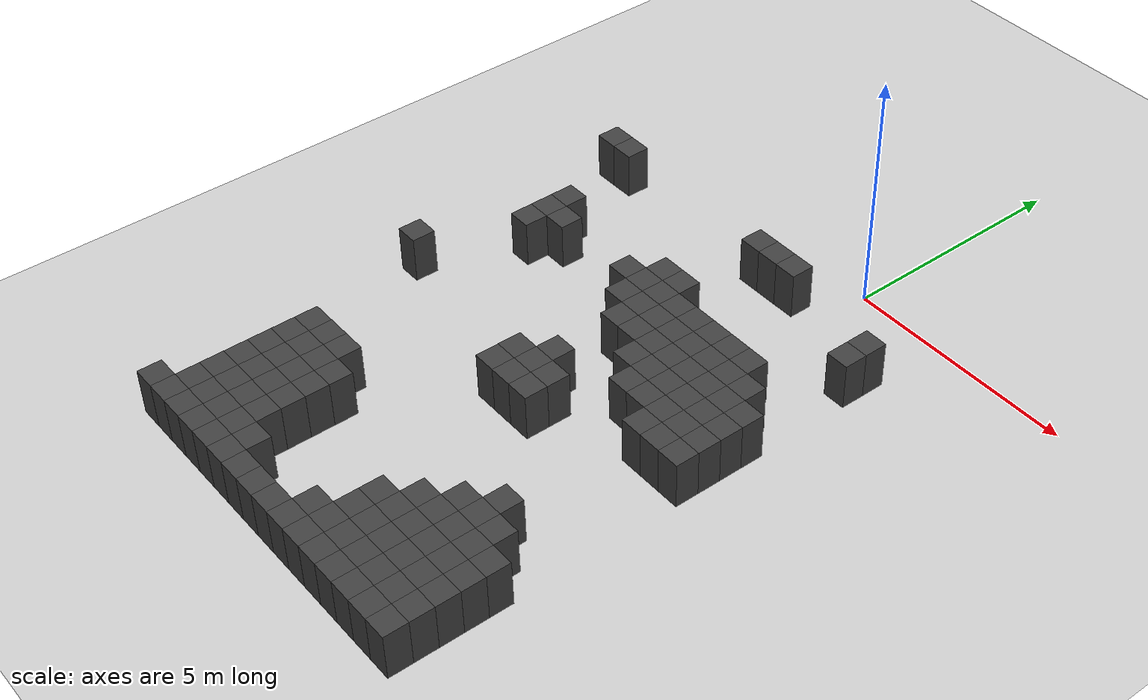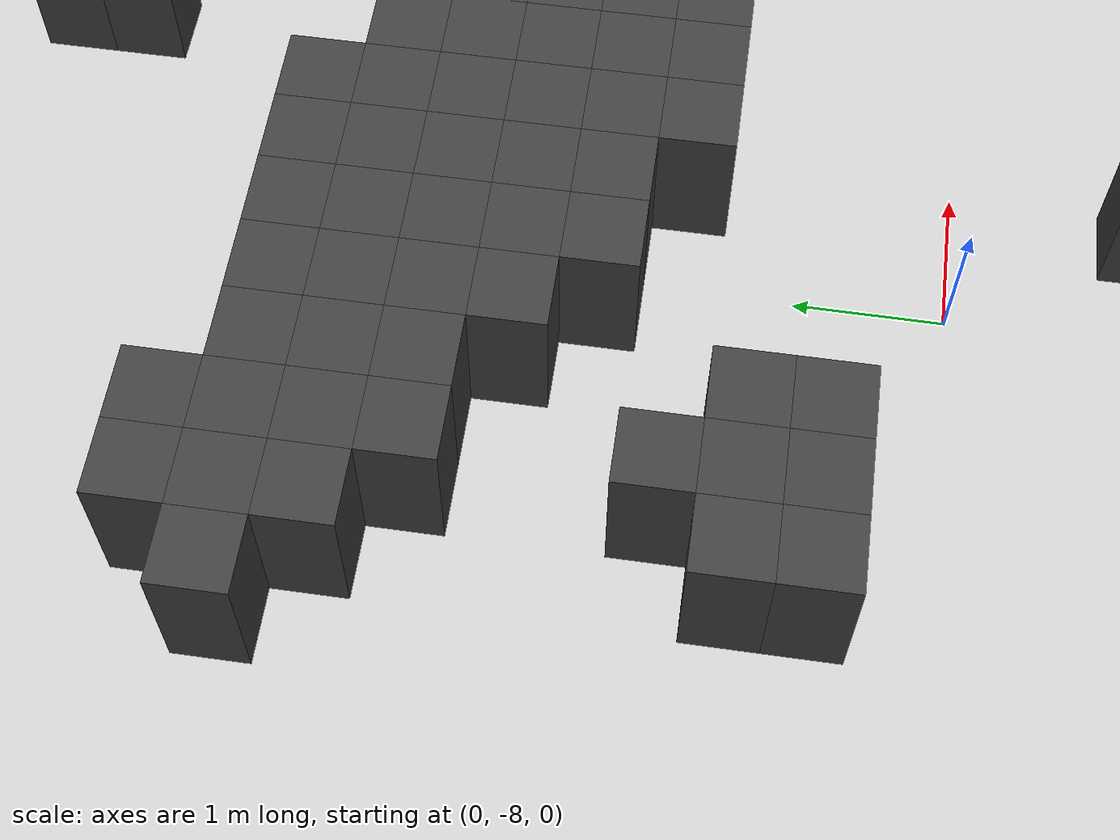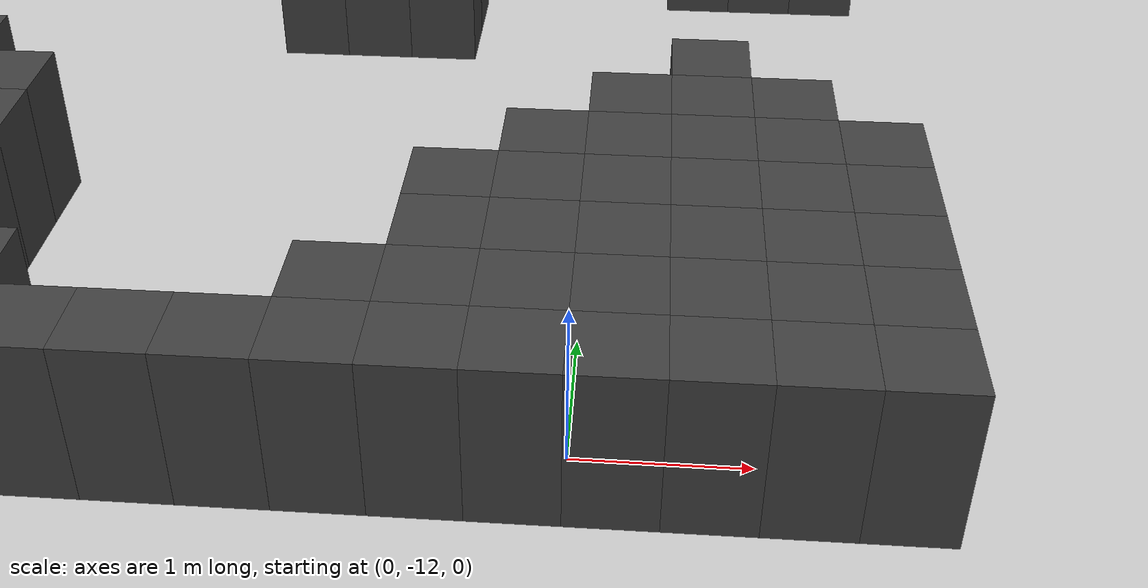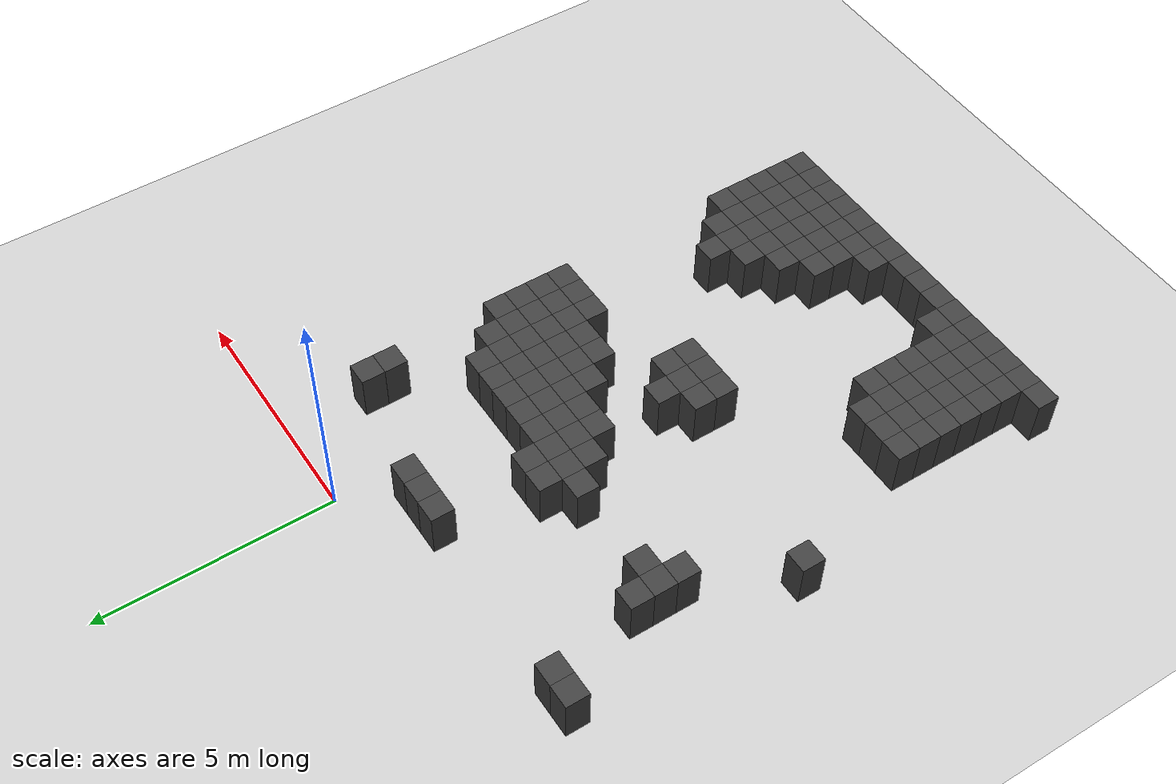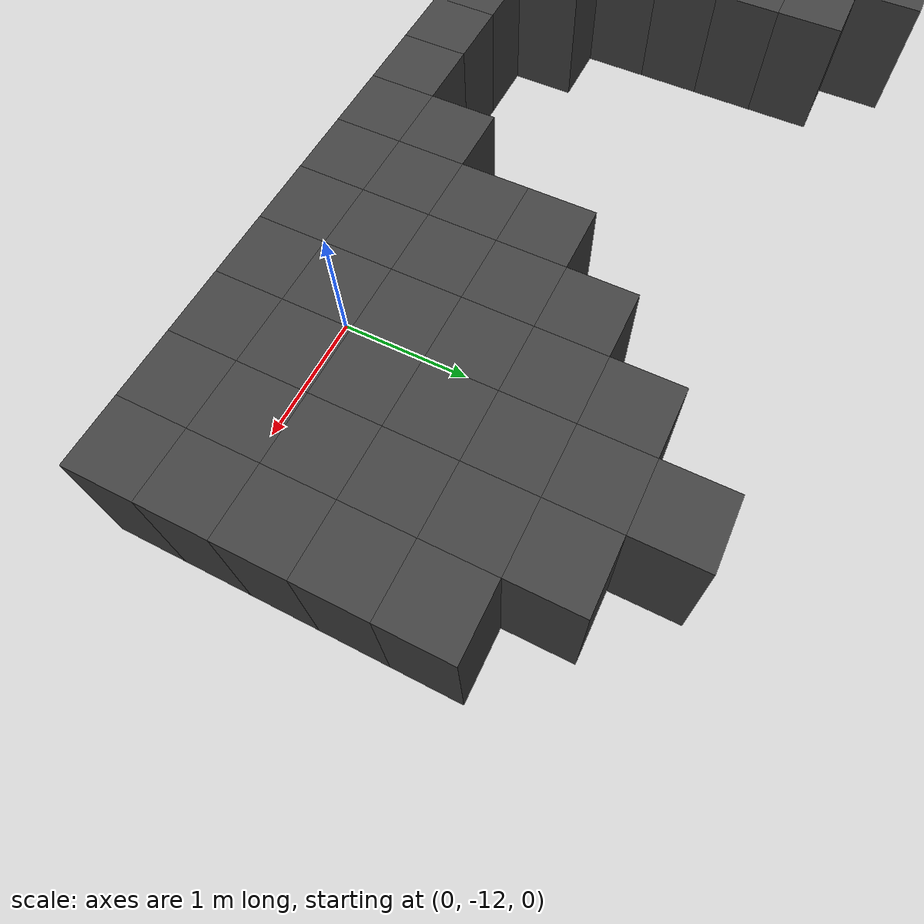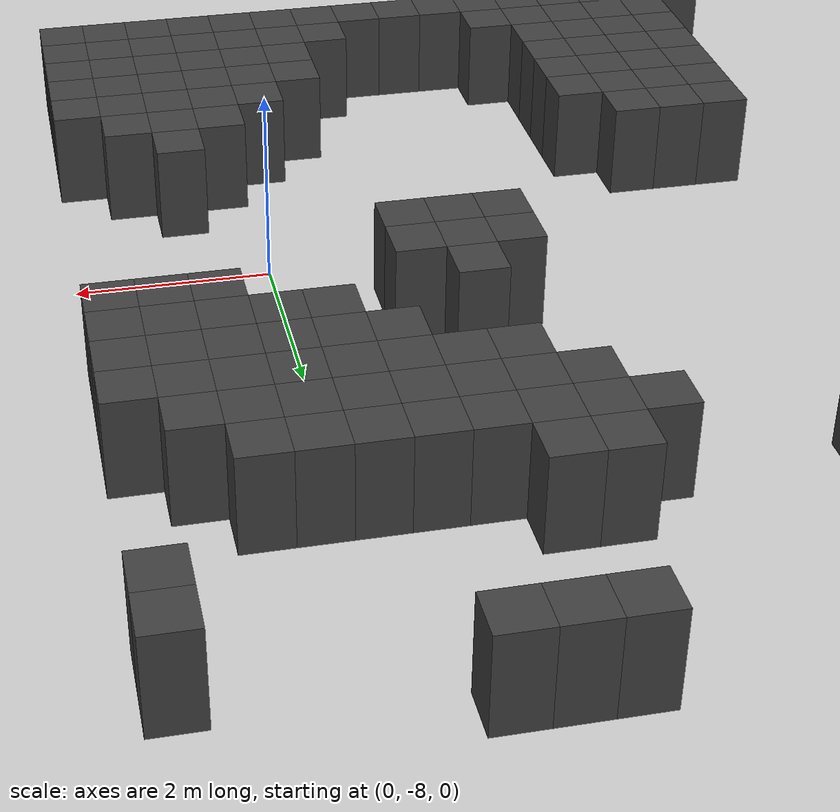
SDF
<sdf version="1.7">
 <world name="map_8843">
  <model name="ground_plane">
   <static>true</static>
   <link name="link">
    <collision name="collision">
     <geometry><plane><normal>0 0 1</normal><size>200 200</size></plane></geometry>
    </collision>
    <visual name="visual">
     <geometry><plane><normal>0 0 1</normal><size>200 200</size></plane></geometry>
     <material><ambient>0.8 0.8 0.8 1</ambient><diffuse>0.8 0.8 0.8 1</diffuse></material>
    </visual>
   </link>
  </model>
  <model name="maze_environment">
   <static>true</static>
   <link name="wall_541">
    <pose>-6.250 -1.250 0.500 0 0 0</pose>
    <collision name="col"><geometry><box><size>0.5 0.5 1.0</size></box></geometry></collision>
    <visual name="vis">
     <geometry><box><size>0.5 0.5 1.0</size></box></geometry>
     <material><ambient>0.15 0.15 0.15 1</ambient><diffuse>0.25 0.25 0.25 1</diffuse></material>
    </visual>
   </link>
   <link name="wall_542">
    <pose>-5.750 -1.250 0.500 0 0 0</pose>
    <collision name="col"><geometry><box><size>0.5 0.5 1.0</size></box></geometry></collision>
    <visual name="vis">
     <geometry><box><size>0.5 0.5 1.0</size></box></geometry>
     <material><ambient>0.15 0.15 0.15 1</ambient><diffuse>0.25 0.25 0.25 1</diffuse></material>
    </visual>
   </link>
   <link name="wall_543">
    <pose>-1.750 -1.250 0.500 0 0 0</pose>
    <collision name="col"><geometry><box><size>0.5 0.5 1.0</size></box></geometry></collision>
    <visual name="vis">
     <geometry><box><size>0.5 0.5 1.0</size></box></geometry>
     <material><ambient>0.15 0.15 0.15 1</ambient><diffuse>0.25 0.25 0.25 1</diffuse></material>
    </visual>
   </link>
   <link name="wall_544">
    <pose>-1.250 -1.250 0.500 0 0 0</pose>
    <collision name="col"><geometry><box><size>0.5 0.5 1.0</size></box></geometry></collision>
    <visual name="vis">
     <geometry><box><size>0.5 0.5 1.0</size></box></geometry>
     <material><ambient>0.15 0.15 0.15 1</ambient><diffuse>0.25 0.25 0.25 1</diffuse></material>
    </visual>
   </link>
   <link name="wall_545">
    <pose>-0.750 -1.250 0.500 0 0 0</pose>
    <collision name="col"><geometry><box><size>0.5 0.5 1.0</size></box></geometry></collision>
    <visual name="vis">
     <geometry><box><size>0.5 0.5 1.0</size></box></geometry>
     <material><ambient>0.15 0.15 0.15 1</ambient><diffuse>0.25 0.25 0.25 1</diffuse></material>
    </visual>
   </link>
   <link name="wall_558">
    <pose>1.750 -1.750 0.500 0 0 0</pose>
    <collision name="col"><geometry><box><size>0.5 0.5 1.0</size></box></geometry></collision>
    <visual name="vis">
     <geometry><box><size>0.5 0.5 1.0</size></box></geometry>
     <material><ambient>0.15 0.15 0.15 1</ambient><diffuse>0.25 0.25 0.25 1</diffuse></material>
    </visual>
   </link>
   <link name="wall_571">
    <pose>1.750 -2.250 0.500 0 0 0</pose>
    <collision name="col"><geometry><box><size>0.5 0.5 1.0</size></box></geometry></collision>
    <visual name="vis">
     <geometry><box><size>0.5 0.5 1.0</size></box></geometry>
     <material><ambient>0.15 0.15 0.15 1</ambient><diffuse>0.25 0.25 0.25 1</diffuse></material>
    </visual>
   </link>
   <link name="wall_598">
    <pose>-5.250 -3.250 0.500 0 0 0</pose>
    <collision name="col"><geometry><box><size>0.5 0.5 1.0</size></box></geometry></collision>
    <visual name="vis">
     <geometry><box><size>0.5 0.5 1.0</size></box></geometry>
     <material><ambient>0.15 0.15 0.15 1</ambient><diffuse>0.25 0.25 0.25 1</diffuse></material>
    </visual>
   </link>
   <link name="wall_599">
    <pose>-2.250 -3.250 0.500 0 0 0</pose>
    <collision name="col"><geometry><box><size>0.5 0.5 1.0</size></box></geometry></collision>
    <visual name="vis">
     <geometry><box><size>0.5 0.5 1.0</size></box></geometry>
     <material><ambient>0.15 0.15 0.15 1</ambient><diffuse>0.25 0.25 0.25 1</diffuse></material>
    </visual>
   </link>
   <link name="wall_600">
    <pose>-1.750 -3.250 0.500 0 0 0</pose>
    <collision name="col"><geometry><box><size>0.5 0.5 1.0</size></box></geometry></collision>
    <visual name="vis">
     <geometry><box><size>0.5 0.5 1.0</size></box></geometry>
     <material><ambient>0.15 0.15 0.15 1</ambient><diffuse>0.25 0.25 0.25 1</diffuse></material>
    </visual>
   </link>
   <link name="wall_612">
    <pose>-5.250 -3.750 0.500 0 0 0</pose>
    <collision name="col"><geometry><box><size>0.5 0.5 1.0</size></box></geometry></collision>
    <visual name="vis">
     <geometry><box><size>0.5 0.5 1.0</size></box></geometry>
     <material><ambient>0.15 0.15 0.15 1</ambient><diffuse>0.25 0.25 0.25 1</diffuse></material>
    </visual>
   </link>
   <link name="wall_613">
    <pose>-4.750 -3.750 0.500 0 0 0</pose>
    <collision name="col"><geometry><box><size>0.5 0.5 1.0</size></box></geometry></collision>
    <visual name="vis">
     <geometry><box><size>0.5 0.5 1.0</size></box></geometry>
     <material><ambient>0.15 0.15 0.15 1</ambient><diffuse>0.25 0.25 0.25 1</diffuse></material>
    </visual>
   </link>
   <link name="wall_614">
    <pose>-2.750 -3.750 0.500 0 0 0</pose>
    <collision name="col"><geometry><box><size>0.5 0.5 1.0</size></box></geometry></collision>
    <visual name="vis">
     <geometry><box><size>0.5 0.5 1.0</size></box></geometry>
     <material><ambient>0.15 0.15 0.15 1</ambient><diffuse>0.25 0.25 0.25 1</diffuse></material>
    </visual>
   </link>
   <link name="wall_615">
    <pose>-2.250 -3.750 0.500 0 0 0</pose>
    <collision name="col"><geometry><box><size>0.5 0.5 1.0</size></box></geometry></collision>
    <visual name="vis">
     <geometry><box><size>0.5 0.5 1.0</size></box></geometry>
     <material><ambient>0.15 0.15 0.15 1</ambient><diffuse>0.25 0.25 0.25 1</diffuse></material>
    </visual>
   </link>
   <link name="wall_616">
    <pose>-1.750 -3.750 0.500 0 0 0</pose>
    <collision name="col"><geometry><box><size>0.5 0.5 1.0</size></box></geometry></collision>
    <visual name="vis">
     <geometry><box><size>0.5 0.5 1.0</size></box></geometry>
     <material><ambient>0.15 0.15 0.15 1</ambient><diffuse>0.25 0.25 0.25 1</diffuse></material>
    </visual>
   </link>
   <link name="wall_617">
    <pose>-1.250 -3.750 0.500 0 0 0</pose>
    <collision name="col"><geometry><box><size>0.5 0.5 1.0</size></box></geometry></collision>
    <visual name="vis">
     <geometry><box><size>0.5 0.5 1.0</size></box></geometry>
     <material><ambient>0.15 0.15 0.15 1</ambient><diffuse>0.25 0.25 0.25 1</diffuse></material>
    </visual>
   </link>
   <link name="wall_618">
    <pose>-0.750 -3.750 0.500 0 0 0</pose>
    <collision name="col"><geometry><box><size>0.5 0.5 1.0</size></box></geometry></collision>
    <visual name="vis">
     <geometry><box><size>0.5 0.5 1.0</size></box></geometry>
     <material><ambient>0.15 0.15 0.15 1</ambient><diffuse>0.25 0.25 0.25 1</diffuse></material>
    </visual>
   </link>
   <link name="wall_619">
    <pose>-0.250 -3.750 0.500 0 0 0</pose>
    <collision name="col"><geometry><box><size>0.5 0.5 1.0</size></box></geometry></collision>
    <visual name="vis">
     <geometry><box><size>0.5 0.5 1.0</size></box></geometry>
     <material><ambient>0.15 0.15 0.15 1</ambient><diffuse>0.25 0.25 0.25 1</diffuse></material>
    </visual>
   </link>
   <link name="wall_620">
    <pose>0.250 -3.750 0.500 0 0 0</pose>
    <collision name="col"><geometry><box><size>0.5 0.5 1.0</size></box></geometry></collision>
    <visual name="vis">
     <geometry><box><size>0.5 0.5 1.0</size></box></geometry>
     <material><ambient>0.15 0.15 0.15 1</ambient><diffuse>0.25 0.25 0.25 1</diffuse></material>
    </visual>
   </link>
   <link name="wall_621">
    <pose>0.750 -3.750 0.500 0 0 0</pose>
    <collision name="col"><geometry><box><size>0.5 0.5 1.0</size></box></geometry></collision>
    <visual name="vis">
     <geometry><box><size>0.5 0.5 1.0</size></box></geometry>
     <material><ambient>0.15 0.15 0.15 1</ambient><diffuse>0.25 0.25 0.25 1</diffuse></material>
    </visual>
   </link>
   <link name="wall_632">
    <pose>-5.250 -4.250 0.500 0 0 0</pose>
    <collision name="col"><geometry><box><size>0.5 0.5 1.0</size></box></geometry></collision>
    <visual name="vis">
     <geometry><box><size>0.5 0.5 1.0</size></box></geometry>
     <material><ambient>0.15 0.15 0.15 1</ambient><diffuse>0.25 0.25 0.25 1</diffuse></material>
    </visual>
   </link>
   <link name="wall_633">
    <pose>-2.250 -4.250 0.500 0 0 0</pose>
    <collision name="col"><geometry><box><size>0.5 0.5 1.0</size></box></geometry></collision>
    <visual name="vis">
     <geometry><box><size>0.5 0.5 1.0</size></box></geometry>
     <material><ambient>0.15 0.15 0.15 1</ambient><diffuse>0.25 0.25 0.25 1</diffuse></material>
    </visual>
   </link>
   <link name="wall_634">
    <pose>-1.750 -4.250 0.500 0 0 0</pose>
    <collision name="col"><geometry><box><size>0.5 0.5 1.0</size></box></geometry></collision>
    <visual name="vis">
     <geometry><box><size>0.5 0.5 1.0</size></box></geometry>
     <material><ambient>0.15 0.15 0.15 1</ambient><diffuse>0.25 0.25 0.25 1</diffuse></material>
    </visual>
   </link>
   <link name="wall_635">
    <pose>-1.250 -4.250 0.500 0 0 0</pose>
    <collision name="col"><geometry><box><size>0.5 0.5 1.0</size></box></geometry></collision>
    <visual name="vis">
     <geometry><box><size>0.5 0.5 1.0</size></box></geometry>
     <material><ambient>0.15 0.15 0.15 1</ambient><diffuse>0.25 0.25 0.25 1</diffuse></material>
    </visual>
   </link>
   <link name="wall_636">
    <pose>-0.750 -4.250 0.500 0 0 0</pose>
    <collision name="col"><geometry><box><size>0.5 0.5 1.0</size></box></geometry></collision>
    <visual name="vis">
     <geometry><box><size>0.5 0.5 1.0</size></box></geometry>
     <material><ambient>0.15 0.15 0.15 1</ambient><diffuse>0.25 0.25 0.25 1</diffuse></material>
    </visual>
   </link>
   <link name="wall_637">
    <pose>-0.250 -4.250 0.500 0 0 0</pose>
    <collision name="col"><geometry><box><size>0.5 0.5 1.0</size></box></geometry></collision>
    <visual name="vis">
     <geometry><box><size>0.5 0.5 1.0</size></box></geometry>
     <material><ambient>0.15 0.15 0.15 1</ambient><diffuse>0.25 0.25 0.25 1</diffuse></material>
    </visual>
   </link>
   <link name="wall_638">
    <pose>0.250 -4.250 0.500 0 0 0</pose>
    <collision name="col"><geometry><box><size>0.5 0.5 1.0</size></box></geometry></collision>
    <visual name="vis">
     <geometry><box><size>0.5 0.5 1.0</size></box></geometry>
     <material><ambient>0.15 0.15 0.15 1</ambient><diffuse>0.25 0.25 0.25 1</diffuse></material>
    </visual>
   </link>
   <link name="wall_639">
    <pose>0.750 -4.250 0.500 0 0 0</pose>
    <collision name="col"><geometry><box><size>0.5 0.5 1.0</size></box></geometry></collision>
    <visual name="vis">
     <geometry><box><size>0.5 0.5 1.0</size></box></geometry>
     <material><ambient>0.15 0.15 0.15 1</ambient><diffuse>0.25 0.25 0.25 1</diffuse></material>
    </visual>
   </link>
   <link name="wall_640">
    <pose>1.250 -4.250 0.500 0 0 0</pose>
    <collision name="col"><geometry><box><size>0.5 0.5 1.0</size></box></geometry></collision>
    <visual name="vis">
     <geometry><box><size>0.5 0.5 1.0</size></box></geometry>
     <material><ambient>0.15 0.15 0.15 1</ambient><diffuse>0.25 0.25 0.25 1</diffuse></material>
    </visual>
   </link>
   <link name="wall_650">
    <pose>-1.750 -4.750 0.500 0 0 0</pose>
    <collision name="col"><geometry><box><size>0.5 0.5 1.0</size></box></geometry></collision>
    <visual name="vis">
     <geometry><box><size>0.5 0.5 1.0</size></box></geometry>
     <material><ambient>0.15 0.15 0.15 1</ambient><diffuse>0.25 0.25 0.25 1</diffuse></material>
    </visual>
   </link>
   <link name="wall_651">
    <pose>-1.250 -4.750 0.500 0 0 0</pose>
    <collision name="col"><geometry><box><size>0.5 0.5 1.0</size></box></geometry></collision>
    <visual name="vis">
     <geometry><box><size>0.5 0.5 1.0</size></box></geometry>
     <material><ambient>0.15 0.15 0.15 1</ambient><diffuse>0.25 0.25 0.25 1</diffuse></material>
    </visual>
   </link>
   <link name="wall_652">
    <pose>-0.750 -4.750 0.500 0 0 0</pose>
    <collision name="col"><geometry><box><size>0.5 0.5 1.0</size></box></geometry></collision>
    <visual name="vis">
     <geometry><box><size>0.5 0.5 1.0</size></box></geometry>
     <material><ambient>0.15 0.15 0.15 1</ambient><diffuse>0.25 0.25 0.25 1</diffuse></material>
    </visual>
   </link>
   <link name="wall_653">
    <pose>-0.250 -4.750 0.500 0 0 0</pose>
    <collision name="col"><geometry><box><size>0.5 0.5 1.0</size></box></geometry></collision>
    <visual name="vis">
     <geometry><box><size>0.5 0.5 1.0</size></box></geometry>
     <material><ambient>0.15 0.15 0.15 1</ambient><diffuse>0.25 0.25 0.25 1</diffuse></material>
    </visual>
   </link>
   <link name="wall_654">
    <pose>0.250 -4.750 0.500 0 0 0</pose>
    <collision name="col"><geometry><box><size>0.5 0.5 1.0</size></box></geometry></collision>
    <visual name="vis">
     <geometry><box><size>0.5 0.5 1.0</size></box></geometry>
     <material><ambient>0.15 0.15 0.15 1</ambient><diffuse>0.25 0.25 0.25 1</diffuse></material>
    </visual>
   </link>
   <link name="wall_655">
    <pose>0.750 -4.750 0.500 0 0 0</pose>
    <collision name="col"><geometry><box><size>0.5 0.5 1.0</size></box></geometry></collision>
    <visual name="vis">
     <geometry><box><size>0.5 0.5 1.0</size></box></geometry>
     <material><ambient>0.15 0.15 0.15 1</ambient><diffuse>0.25 0.25 0.25 1</diffuse></material>
    </visual>
   </link>
   <link name="wall_656">
    <pose>1.250 -4.750 0.500 0 0 0</pose>
    <collision name="col"><geometry><box><size>0.5 0.5 1.0</size></box></geometry></collision>
    <visual name="vis">
     <geometry><box><size>0.5 0.5 1.0</size></box></geometry>
     <material><ambient>0.15 0.15 0.15 1</ambient><diffuse>0.25 0.25 0.25 1</diffuse></material>
    </visual>
   </link>
   <link name="wall_657">
    <pose>1.750 -4.750 0.500 0 0 0</pose>
    <collision name="col"><geometry><box><size>0.5 0.5 1.0</size></box></geometry></collision>
    <visual name="vis">
     <geometry><box><size>0.5 0.5 1.0</size></box></geometry>
     <material><ambient>0.15 0.15 0.15 1</ambient><diffuse>0.25 0.25 0.25 1</diffuse></material>
    </visual>
   </link>
   <link name="wall_666">
    <pose>-0.750 -5.250 0.500 0 0 0</pose>
    <collision name="col"><geometry><box><size>0.5 0.5 1.0</size></box></geometry></collision>
    <visual name="vis">
     <geometry><box><size>0.5 0.5 1.0</size></box></geometry>
     <material><ambient>0.15 0.15 0.15 1</ambient><diffuse>0.25 0.25 0.25 1</diffuse></material>
    </visual>
   </link>
   <link name="wall_667">
    <pose>-0.250 -5.250 0.500 0 0 0</pose>
    <collision name="col"><geometry><box><size>0.5 0.5 1.0</size></box></geometry></collision>
    <visual name="vis">
     <geometry><box><size>0.5 0.5 1.0</size></box></geometry>
     <material><ambient>0.15 0.15 0.15 1</ambient><diffuse>0.25 0.25 0.25 1</diffuse></material>
    </visual>
   </link>
   <link name="wall_668">
    <pose>0.250 -5.250 0.500 0 0 0</pose>
    <collision name="col"><geometry><box><size>0.5 0.5 1.0</size></box></geometry></collision>
    <visual name="vis">
     <geometry><box><size>0.5 0.5 1.0</size></box></geometry>
     <material><ambient>0.15 0.15 0.15 1</ambient><diffuse>0.25 0.25 0.25 1</diffuse></material>
    </visual>
   </link>
   <link name="wall_669">
    <pose>0.750 -5.250 0.500 0 0 0</pose>
    <collision name="col"><geometry><box><size>0.5 0.5 1.0</size></box></geometry></collision>
    <visual name="vis">
     <geometry><box><size>0.5 0.5 1.0</size></box></geometry>
     <material><ambient>0.15 0.15 0.15 1</ambient><diffuse>0.25 0.25 0.25 1</diffuse></material>
    </visual>
   </link>
   <link name="wall_670">
    <pose>1.250 -5.250 0.500 0 0 0</pose>
    <collision name="col"><geometry><box><size>0.5 0.5 1.0</size></box></geometry></collision>
    <visual name="vis">
     <geometry><box><size>0.5 0.5 1.0</size></box></geometry>
     <material><ambient>0.15 0.15 0.15 1</ambient><diffuse>0.25 0.25 0.25 1</diffuse></material>
    </visual>
   </link>
   <link name="wall_671">
    <pose>1.750 -5.250 0.500 0 0 0</pose>
    <collision name="col"><geometry><box><size>0.5 0.5 1.0</size></box></geometry></collision>
    <visual name="vis">
     <geometry><box><size>0.5 0.5 1.0</size></box></geometry>
     <material><ambient>0.15 0.15 0.15 1</ambient><diffuse>0.25 0.25 0.25 1</diffuse></material>
    </visual>
   </link>
   <link name="wall_687">
    <pose>-0.250 -5.750 0.500 0 0 0</pose>
    <collision name="col"><geometry><box><size>0.5 0.5 1.0</size></box></geometry></collision>
    <visual name="vis">
     <geometry><box><size>0.5 0.5 1.0</size></box></geometry>
     <material><ambient>0.15 0.15 0.15 1</ambient><diffuse>0.25 0.25 0.25 1</diffuse></material>
    </visual>
   </link>
   <link name="wall_688">
    <pose>0.250 -5.750 0.500 0 0 0</pose>
    <collision name="col"><geometry><box><size>0.5 0.5 1.0</size></box></geometry></collision>
    <visual name="vis">
     <geometry><box><size>0.5 0.5 1.0</size></box></geometry>
     <material><ambient>0.15 0.15 0.15 1</ambient><diffuse>0.25 0.25 0.25 1</diffuse></material>
    </visual>
   </link>
   <link name="wall_689">
    <pose>0.750 -5.750 0.500 0 0 0</pose>
    <collision name="col"><geometry><box><size>0.5 0.5 1.0</size></box></geometry></collision>
    <visual name="vis">
     <geometry><box><size>0.5 0.5 1.0</size></box></geometry>
     <material><ambient>0.15 0.15 0.15 1</ambient><diffuse>0.25 0.25 0.25 1</diffuse></material>
    </visual>
   </link>
   <link name="wall_690">
    <pose>1.250 -5.750 0.500 0 0 0</pose>
    <collision name="col"><geometry><box><size>0.5 0.5 1.0</size></box></geometry></collision>
    <visual name="vis">
     <geometry><box><size>0.5 0.5 1.0</size></box></geometry>
     <material><ambient>0.15 0.15 0.15 1</ambient><diffuse>0.25 0.25 0.25 1</diffuse></material>
    </visual>
   </link>
   <link name="wall_691">
    <pose>1.750 -5.750 0.500 0 0 0</pose>
    <collision name="col"><geometry><box><size>0.5 0.5 1.0</size></box></geometry></collision>
    <visual name="vis">
     <geometry><box><size>0.5 0.5 1.0</size></box></geometry>
     <material><ambient>0.15 0.15 0.15 1</ambient><diffuse>0.25 0.25 0.25 1</diffuse></material>
    </visual>
   </link>
   <link name="wall_711">
    <pose>-6.250 -6.250 0.500 0 0 0</pose>
    <collision name="col"><geometry><box><size>0.5 0.5 1.0</size></box></geometry></collision>
    <visual name="vis">
     <geometry><box><size>0.5 0.5 1.0</size></box></geometry>
     <material><ambient>0.15 0.15 0.15 1</ambient><diffuse>0.25 0.25 0.25 1</diffuse></material>
    </visual>
   </link>
   <link name="wall_712">
    <pose>-1.750 -6.250 0.500 0 0 0</pose>
    <collision name="col"><geometry><box><size>0.5 0.5 1.0</size></box></geometry></collision>
    <visual name="vis">
     <geometry><box><size>0.5 0.5 1.0</size></box></geometry>
     <material><ambient>0.15 0.15 0.15 1</ambient><diffuse>0.25 0.25 0.25 1</diffuse></material>
    </visual>
   </link>
   <link name="wall_713">
    <pose>0.750 -6.250 0.500 0 0 0</pose>
    <collision name="col"><geometry><box><size>0.5 0.5 1.0</size></box></geometry></collision>
    <visual name="vis">
     <geometry><box><size>0.5 0.5 1.0</size></box></geometry>
     <material><ambient>0.15 0.15 0.15 1</ambient><diffuse>0.25 0.25 0.25 1</diffuse></material>
    </visual>
   </link>
   <link name="wall_714">
    <pose>1.250 -6.250 0.500 0 0 0</pose>
    <collision name="col"><geometry><box><size>0.5 0.5 1.0</size></box></geometry></collision>
    <visual name="vis">
     <geometry><box><size>0.5 0.5 1.0</size></box></geometry>
     <material><ambient>0.15 0.15 0.15 1</ambient><diffuse>0.25 0.25 0.25 1</diffuse></material>
    </visual>
   </link>
   <link name="wall_715">
    <pose>1.750 -6.250 0.500 0 0 0</pose>
    <collision name="col"><geometry><box><size>0.5 0.5 1.0</size></box></geometry></collision>
    <visual name="vis">
     <geometry><box><size>0.5 0.5 1.0</size></box></geometry>
     <material><ambient>0.15 0.15 0.15 1</ambient><diffuse>0.25 0.25 0.25 1</diffuse></material>
    </visual>
   </link>
   <link name="wall_736">
    <pose>-2.250 -6.750 0.500 0 0 0</pose>
    <collision name="col"><geometry><box><size>0.5 0.5 1.0</size></box></geometry></collision>
    <visual name="vis">
     <geometry><box><size>0.5 0.5 1.0</size></box></geometry>
     <material><ambient>0.15 0.15 0.15 1</ambient><diffuse>0.25 0.25 0.25 1</diffuse></material>
    </visual>
   </link>
   <link name="wall_737">
    <pose>-1.750 -6.750 0.500 0 0 0</pose>
    <collision name="col"><geometry><box><size>0.5 0.5 1.0</size></box></geometry></collision>
    <visual name="vis">
     <geometry><box><size>0.5 0.5 1.0</size></box></geometry>
     <material><ambient>0.15 0.15 0.15 1</ambient><diffuse>0.25 0.25 0.25 1</diffuse></material>
    </visual>
   </link>
   <link name="wall_738">
    <pose>-1.250 -6.750 0.500 0 0 0</pose>
    <collision name="col"><geometry><box><size>0.5 0.5 1.0</size></box></geometry></collision>
    <visual name="vis">
     <geometry><box><size>0.5 0.5 1.0</size></box></geometry>
     <material><ambient>0.15 0.15 0.15 1</ambient><diffuse>0.25 0.25 0.25 1</diffuse></material>
    </visual>
   </link>
   <link name="wall_760">
    <pose>-2.250 -7.250 0.500 0 0 0</pose>
    <collision name="col"><geometry><box><size>0.5 0.5 1.0</size></box></geometry></collision>
    <visual name="vis">
     <geometry><box><size>0.5 0.5 1.0</size></box></geometry>
     <material><ambient>0.15 0.15 0.15 1</ambient><diffuse>0.25 0.25 0.25 1</diffuse></material>
    </visual>
   </link>
   <link name="wall_761">
    <pose>-1.750 -7.250 0.500 0 0 0</pose>
    <collision name="col"><geometry><box><size>0.5 0.5 1.0</size></box></geometry></collision>
    <visual name="vis">
     <geometry><box><size>0.5 0.5 1.0</size></box></geometry>
     <material><ambient>0.15 0.15 0.15 1</ambient><diffuse>0.25 0.25 0.25 1</diffuse></material>
    </visual>
   </link>
   <link name="wall_762">
    <pose>-1.250 -7.250 0.500 0 0 0</pose>
    <collision name="col"><geometry><box><size>0.5 0.5 1.0</size></box></geometry></collision>
    <visual name="vis">
     <geometry><box><size>0.5 0.5 1.0</size></box></geometry>
     <material><ambient>0.15 0.15 0.15 1</ambient><diffuse>0.25 0.25 0.25 1</diffuse></material>
    </visual>
   </link>
   <link name="wall_853">
    <pose>-5.250 -9.250 0.500 0 0 0</pose>
    <collision name="col"><geometry><box><size>0.5 0.5 1.0</size></box></geometry></collision>
    <visual name="vis">
     <geometry><box><size>0.5 0.5 1.0</size></box></geometry>
     <material><ambient>0.15 0.15 0.15 1</ambient><diffuse>0.25 0.25 0.25 1</diffuse></material>
    </visual>
   </link>
   <link name="wall_854">
    <pose>-4.750 -9.250 0.500 0 0 0</pose>
    <collision name="col"><geometry><box><size>0.5 0.5 1.0</size></box></geometry></collision>
    <visual name="vis">
     <geometry><box><size>0.5 0.5 1.0</size></box></geometry>
     <material><ambient>0.15 0.15 0.15 1</ambient><diffuse>0.25 0.25 0.25 1</diffuse></material>
    </visual>
   </link>
   <link name="wall_855">
    <pose>-4.250 -9.250 0.500 0 0 0</pose>
    <collision name="col"><geometry><box><size>0.5 0.5 1.0</size></box></geometry></collision>
    <visual name="vis">
     <geometry><box><size>0.5 0.5 1.0</size></box></geometry>
     <material><ambient>0.15 0.15 0.15 1</ambient><diffuse>0.25 0.25 0.25 1</diffuse></material>
    </visual>
   </link>
   <link name="wall_856">
    <pose>0.750 -9.250 0.500 0 0 0</pose>
    <collision name="col"><geometry><box><size>0.5 0.5 1.0</size></box></geometry></collision>
    <visual name="vis">
     <geometry><box><size>0.5 0.5 1.0</size></box></geometry>
     <material><ambient>0.15 0.15 0.15 1</ambient><diffuse>0.25 0.25 0.25 1</diffuse></material>
    </visual>
   </link>
   <link name="wall_872">
    <pose>-5.250 -9.750 0.500 0 0 0</pose>
    <collision name="col"><geometry><box><size>0.5 0.5 1.0</size></box></geometry></collision>
    <visual name="vis">
     <geometry><box><size>0.5 0.5 1.0</size></box></geometry>
     <material><ambient>0.15 0.15 0.15 1</ambient><diffuse>0.25 0.25 0.25 1</diffuse></material>
    </visual>
   </link>
   <link name="wall_873">
    <pose>-4.750 -9.750 0.500 0 0 0</pose>
    <collision name="col"><geometry><box><size>0.5 0.5 1.0</size></box></geometry></collision>
    <visual name="vis">
     <geometry><box><size>0.5 0.5 1.0</size></box></geometry>
     <material><ambient>0.15 0.15 0.15 1</ambient><diffuse>0.25 0.25 0.25 1</diffuse></material>
    </visual>
   </link>
   <link name="wall_874">
    <pose>-4.250 -9.750 0.500 0 0 0</pose>
    <collision name="col"><geometry><box><size>0.5 0.5 1.0</size></box></geometry></collision>
    <visual name="vis">
     <geometry><box><size>0.5 0.5 1.0</size></box></geometry>
     <material><ambient>0.15 0.15 0.15 1</ambient><diffuse>0.25 0.25 0.25 1</diffuse></material>
    </visual>
   </link>
   <link name="wall_875">
    <pose>-3.750 -9.750 0.500 0 0 0</pose>
    <collision name="col"><geometry><box><size>0.5 0.5 1.0</size></box></geometry></collision>
    <visual name="vis">
     <geometry><box><size>0.5 0.5 1.0</size></box></geometry>
     <material><ambient>0.15 0.15 0.15 1</ambient><diffuse>0.25 0.25 0.25 1</diffuse></material>
    </visual>
   </link>
   <link name="wall_876">
    <pose>0.250 -9.750 0.500 0 0 0</pose>
    <collision name="col"><geometry><box><size>0.5 0.5 1.0</size></box></geometry></collision>
    <visual name="vis">
     <geometry><box><size>0.5 0.5 1.0</size></box></geometry>
     <material><ambient>0.15 0.15 0.15 1</ambient><diffuse>0.25 0.25 0.25 1</diffuse></material>
    </visual>
   </link>
   <link name="wall_877">
    <pose>0.750 -9.750 0.500 0 0 0</pose>
    <collision name="col"><geometry><box><size>0.5 0.5 1.0</size></box></geometry></collision>
    <visual name="vis">
     <geometry><box><size>0.5 0.5 1.0</size></box></geometry>
     <material><ambient>0.15 0.15 0.15 1</ambient><diffuse>0.25 0.25 0.25 1</diffuse></material>
    </visual>
   </link>
   <link name="wall_878">
    <pose>1.250 -9.750 0.500 0 0 0</pose>
    <collision name="col"><geometry><box><size>0.5 0.5 1.0</size></box></geometry></collision>
    <visual name="vis">
     <geometry><box><size>0.5 0.5 1.0</size></box></geometry>
     <material><ambient>0.15 0.15 0.15 1</ambient><diffuse>0.25 0.25 0.25 1</diffuse></material>
    </visual>
   </link>
   <link name="wall_887">
    <pose>-5.250 -10.250 0.500 0 0 0</pose>
    <collision name="col"><geometry><box><size>0.5 0.5 1.0</size></box></geometry></collision>
    <visual name="vis">
     <geometry><box><size>0.5 0.5 1.0</size></box></geometry>
     <material><ambient>0.15 0.15 0.15 1</ambient><diffuse>0.25 0.25 0.25 1</diffuse></material>
    </visual>
   </link>
   <link name="wall_888">
    <pose>-4.750 -10.250 0.500 0 0 0</pose>
    <collision name="col"><geometry><box><size>0.5 0.5 1.0</size></box></geometry></collision>
    <visual name="vis">
     <geometry><box><size>0.5 0.5 1.0</size></box></geometry>
     <material><ambient>0.15 0.15 0.15 1</ambient><diffuse>0.25 0.25 0.25 1</diffuse></material>
    </visual>
   </link>
   <link name="wall_889">
    <pose>-4.250 -10.250 0.500 0 0 0</pose>
    <collision name="col"><geometry><box><size>0.5 0.5 1.0</size></box></geometry></collision>
    <visual name="vis">
     <geometry><box><size>0.5 0.5 1.0</size></box></geometry>
     <material><ambient>0.15 0.15 0.15 1</ambient><diffuse>0.25 0.25 0.25 1</diffuse></material>
    </visual>
   </link>
   <link name="wall_890">
    <pose>-3.750 -10.250 0.500 0 0 0</pose>
    <collision name="col"><geometry><box><size>0.5 0.5 1.0</size></box></geometry></collision>
    <visual name="vis">
     <geometry><box><size>0.5 0.5 1.0</size></box></geometry>
     <material><ambient>0.15 0.15 0.15 1</ambient><diffuse>0.25 0.25 0.25 1</diffuse></material>
    </visual>
   </link>
   <link name="wall_891">
    <pose>-0.250 -10.250 0.500 0 0 0</pose>
    <collision name="col"><geometry><box><size>0.5 0.5 1.0</size></box></geometry></collision>
    <visual name="vis">
     <geometry><box><size>0.5 0.5 1.0</size></box></geometry>
     <material><ambient>0.15 0.15 0.15 1</ambient><diffuse>0.25 0.25 0.25 1</diffuse></material>
    </visual>
   </link>
   <link name="wall_892">
    <pose>0.250 -10.250 0.500 0 0 0</pose>
    <collision name="col"><geometry><box><size>0.5 0.5 1.0</size></box></geometry></collision>
    <visual name="vis">
     <geometry><box><size>0.5 0.5 1.0</size></box></geometry>
     <material><ambient>0.15 0.15 0.15 1</ambient><diffuse>0.25 0.25 0.25 1</diffuse></material>
    </visual>
   </link>
   <link name="wall_893">
    <pose>0.750 -10.250 0.500 0 0 0</pose>
    <collision name="col"><geometry><box><size>0.5 0.5 1.0</size></box></geometry></collision>
    <visual name="vis">
     <geometry><box><size>0.5 0.5 1.0</size></box></geometry>
     <material><ambient>0.15 0.15 0.15 1</ambient><diffuse>0.25 0.25 0.25 1</diffuse></material>
    </visual>
   </link>
   <link name="wall_894">
    <pose>1.250 -10.250 0.500 0 0 0</pose>
    <collision name="col"><geometry><box><size>0.5 0.5 1.0</size></box></geometry></collision>
    <visual name="vis">
     <geometry><box><size>0.5 0.5 1.0</size></box></geometry>
     <material><ambient>0.15 0.15 0.15 1</ambient><diffuse>0.25 0.25 0.25 1</diffuse></material>
    </visual>
   </link>
   <link name="wall_895">
    <pose>1.750 -10.250 0.500 0 0 0</pose>
    <collision name="col"><geometry><box><size>0.5 0.5 1.0</size></box></geometry></collision>
    <visual name="vis">
     <geometry><box><size>0.5 0.5 1.0</size></box></geometry>
     <material><ambient>0.15 0.15 0.15 1</ambient><diffuse>0.25 0.25 0.25 1</diffuse></material>
    </visual>
   </link>
   <link name="wall_901">
    <pose>-5.250 -10.750 0.500 0 0 0</pose>
    <collision name="col"><geometry><box><size>0.5 0.5 1.0</size></box></geometry></collision>
    <visual name="vis">
     <geometry><box><size>0.5 0.5 1.0</size></box></geometry>
     <material><ambient>0.15 0.15 0.15 1</ambient><diffuse>0.25 0.25 0.25 1</diffuse></material>
    </visual>
   </link>
   <link name="wall_902">
    <pose>-4.750 -10.750 0.500 0 0 0</pose>
    <collision name="col"><geometry><box><size>0.5 0.5 1.0</size></box></geometry></collision>
    <visual name="vis">
     <geometry><box><size>0.5 0.5 1.0</size></box></geometry>
     <material><ambient>0.15 0.15 0.15 1</ambient><diffuse>0.25 0.25 0.25 1</diffuse></material>
    </visual>
   </link>
   <link name="wall_903">
    <pose>-4.250 -10.750 0.500 0 0 0</pose>
    <collision name="col"><geometry><box><size>0.5 0.5 1.0</size></box></geometry></collision>
    <visual name="vis">
     <geometry><box><size>0.5 0.5 1.0</size></box></geometry>
     <material><ambient>0.15 0.15 0.15 1</ambient><diffuse>0.25 0.25 0.25 1</diffuse></material>
    </visual>
   </link>
   <link name="wall_904">
    <pose>-3.750 -10.750 0.500 0 0 0</pose>
    <collision name="col"><geometry><box><size>0.5 0.5 1.0</size></box></geometry></collision>
    <visual name="vis">
     <geometry><box><size>0.5 0.5 1.0</size></box></geometry>
     <material><ambient>0.15 0.15 0.15 1</ambient><diffuse>0.25 0.25 0.25 1</diffuse></material>
    </visual>
   </link>
   <link name="wall_905">
    <pose>-0.750 -10.750 0.500 0 0 0</pose>
    <collision name="col"><geometry><box><size>0.5 0.5 1.0</size></box></geometry></collision>
    <visual name="vis">
     <geometry><box><size>0.5 0.5 1.0</size></box></geometry>
     <material><ambient>0.15 0.15 0.15 1</ambient><diffuse>0.25 0.25 0.25 1</diffuse></material>
    </visual>
   </link>
   <link name="wall_906">
    <pose>-0.250 -10.750 0.500 0 0 0</pose>
    <collision name="col"><geometry><box><size>0.5 0.5 1.0</size></box></geometry></collision>
    <visual name="vis">
     <geometry><box><size>0.5 0.5 1.0</size></box></geometry>
     <material><ambient>0.15 0.15 0.15 1</ambient><diffuse>0.25 0.25 0.25 1</diffuse></material>
    </visual>
   </link>
   <link name="wall_907">
    <pose>0.250 -10.750 0.500 0 0 0</pose>
    <collision name="col"><geometry><box><size>0.5 0.5 1.0</size></box></geometry></collision>
    <visual name="vis">
     <geometry><box><size>0.5 0.5 1.0</size></box></geometry>
     <material><ambient>0.15 0.15 0.15 1</ambient><diffuse>0.25 0.25 0.25 1</diffuse></material>
    </visual>
   </link>
   <link name="wall_908">
    <pose>0.750 -10.750 0.500 0 0 0</pose>
    <collision name="col"><geometry><box><size>0.5 0.5 1.0</size></box></geometry></collision>
    <visual name="vis">
     <geometry><box><size>0.5 0.5 1.0</size></box></geometry>
     <material><ambient>0.15 0.15 0.15 1</ambient><diffuse>0.25 0.25 0.25 1</diffuse></material>
    </visual>
   </link>
   <link name="wall_909">
    <pose>1.250 -10.750 0.500 0 0 0</pose>
    <collision name="col"><geometry><box><size>0.5 0.5 1.0</size></box></geometry></collision>
    <visual name="vis">
     <geometry><box><size>0.5 0.5 1.0</size></box></geometry>
     <material><ambient>0.15 0.15 0.15 1</ambient><diffuse>0.25 0.25 0.25 1</diffuse></material>
    </visual>
   </link>
   <link name="wall_910">
    <pose>1.750 -10.750 0.500 0 0 0</pose>
    <collision name="col"><geometry><box><size>0.5 0.5 1.0</size></box></geometry></collision>
    <visual name="vis">
     <geometry><box><size>0.5 0.5 1.0</size></box></geometry>
     <material><ambient>0.15 0.15 0.15 1</ambient><diffuse>0.25 0.25 0.25 1</diffuse></material>
    </visual>
   </link>
   <link name="wall_918">
    <pose>-5.250 -11.250 0.500 0 0 0</pose>
    <collision name="col"><geometry><box><size>0.5 0.5 1.0</size></box></geometry></collision>
    <visual name="vis">
     <geometry><box><size>0.5 0.5 1.0</size></box></geometry>
     <material><ambient>0.15 0.15 0.15 1</ambient><diffuse>0.25 0.25 0.25 1</diffuse></material>
    </visual>
   </link>
   <link name="wall_919">
    <pose>-4.750 -11.250 0.500 0 0 0</pose>
    <collision name="col"><geometry><box><size>0.5 0.5 1.0</size></box></geometry></collision>
    <visual name="vis">
     <geometry><box><size>0.5 0.5 1.0</size></box></geometry>
     <material><ambient>0.15 0.15 0.15 1</ambient><diffuse>0.25 0.25 0.25 1</diffuse></material>
    </visual>
   </link>
   <link name="wall_920">
    <pose>-4.250 -11.250 0.500 0 0 0</pose>
    <collision name="col"><geometry><box><size>0.5 0.5 1.0</size></box></geometry></collision>
    <visual name="vis">
     <geometry><box><size>0.5 0.5 1.0</size></box></geometry>
     <material><ambient>0.15 0.15 0.15 1</ambient><diffuse>0.25 0.25 0.25 1</diffuse></material>
    </visual>
   </link>
   <link name="wall_921">
    <pose>-3.750 -11.250 0.500 0 0 0</pose>
    <collision name="col"><geometry><box><size>0.5 0.5 1.0</size></box></geometry></collision>
    <visual name="vis">
     <geometry><box><size>0.5 0.5 1.0</size></box></geometry>
     <material><ambient>0.15 0.15 0.15 1</ambient><diffuse>0.25 0.25 0.25 1</diffuse></material>
    </visual>
   </link>
   <link name="wall_922">
    <pose>-0.750 -11.250 0.500 0 0 0</pose>
    <collision name="col"><geometry><box><size>0.5 0.5 1.0</size></box></geometry></collision>
    <visual name="vis">
     <geometry><box><size>0.5 0.5 1.0</size></box></geometry>
     <material><ambient>0.15 0.15 0.15 1</ambient><diffuse>0.25 0.25 0.25 1</diffuse></material>
    </visual>
   </link>
   <link name="wall_923">
    <pose>-0.250 -11.250 0.500 0 0 0</pose>
    <collision name="col"><geometry><box><size>0.5 0.5 1.0</size></box></geometry></collision>
    <visual name="vis">
     <geometry><box><size>0.5 0.5 1.0</size></box></geometry>
     <material><ambient>0.15 0.15 0.15 1</ambient><diffuse>0.25 0.25 0.25 1</diffuse></material>
    </visual>
   </link>
   <link name="wall_924">
    <pose>0.250 -11.250 0.500 0 0 0</pose>
    <collision name="col"><geometry><box><size>0.5 0.5 1.0</size></box></geometry></collision>
    <visual name="vis">
     <geometry><box><size>0.5 0.5 1.0</size></box></geometry>
     <material><ambient>0.15 0.15 0.15 1</ambient><diffuse>0.25 0.25 0.25 1</diffuse></material>
    </visual>
   </link>
   <link name="wall_925">
    <pose>0.750 -11.250 0.500 0 0 0</pose>
    <collision name="col"><geometry><box><size>0.5 0.5 1.0</size></box></geometry></collision>
    <visual name="vis">
     <geometry><box><size>0.5 0.5 1.0</size></box></geometry>
     <material><ambient>0.15 0.15 0.15 1</ambient><diffuse>0.25 0.25 0.25 1</diffuse></material>
    </visual>
   </link>
   <link name="wall_926">
    <pose>1.250 -11.250 0.500 0 0 0</pose>
    <collision name="col"><geometry><box><size>0.5 0.5 1.0</size></box></geometry></collision>
    <visual name="vis">
     <geometry><box><size>0.5 0.5 1.0</size></box></geometry>
     <material><ambient>0.15 0.15 0.15 1</ambient><diffuse>0.25 0.25 0.25 1</diffuse></material>
    </visual>
   </link>
   <link name="wall_927">
    <pose>1.750 -11.250 0.500 0 0 0</pose>
    <collision name="col"><geometry><box><size>0.5 0.5 1.0</size></box></geometry></collision>
    <visual name="vis">
     <geometry><box><size>0.5 0.5 1.0</size></box></geometry>
     <material><ambient>0.15 0.15 0.15 1</ambient><diffuse>0.25 0.25 0.25 1</diffuse></material>
    </visual>
   </link>
   <link name="wall_941">
    <pose>-5.250 -11.750 0.500 0 0 0</pose>
    <collision name="col"><geometry><box><size>0.5 0.5 1.0</size></box></geometry></collision>
    <visual name="vis">
     <geometry><box><size>0.5 0.5 1.0</size></box></geometry>
     <material><ambient>0.15 0.15 0.15 1</ambient><diffuse>0.25 0.25 0.25 1</diffuse></material>
    </visual>
   </link>
   <link name="wall_942">
    <pose>-4.750 -11.750 0.500 0 0 0</pose>
    <collision name="col"><geometry><box><size>0.5 0.5 1.0</size></box></geometry></collision>
    <visual name="vis">
     <geometry><box><size>0.5 0.5 1.0</size></box></geometry>
     <material><ambient>0.15 0.15 0.15 1</ambient><diffuse>0.25 0.25 0.25 1</diffuse></material>
    </visual>
   </link>
   <link name="wall_943">
    <pose>-4.250 -11.750 0.500 0 0 0</pose>
    <collision name="col"><geometry><box><size>0.5 0.5 1.0</size></box></geometry></collision>
    <visual name="vis">
     <geometry><box><size>0.5 0.5 1.0</size></box></geometry>
     <material><ambient>0.15 0.15 0.15 1</ambient><diffuse>0.25 0.25 0.25 1</diffuse></material>
    </visual>
   </link>
   <link name="wall_944">
    <pose>-3.750 -11.750 0.500 0 0 0</pose>
    <collision name="col"><geometry><box><size>0.5 0.5 1.0</size></box></geometry></collision>
    <visual name="vis">
     <geometry><box><size>0.5 0.5 1.0</size></box></geometry>
     <material><ambient>0.15 0.15 0.15 1</ambient><diffuse>0.25 0.25 0.25 1</diffuse></material>
    </visual>
   </link>
   <link name="wall_945">
    <pose>-3.250 -11.750 0.500 0 0 0</pose>
    <collision name="col"><geometry><box><size>0.5 0.5 1.0</size></box></geometry></collision>
    <visual name="vis">
     <geometry><box><size>0.5 0.5 1.0</size></box></geometry>
     <material><ambient>0.15 0.15 0.15 1</ambient><diffuse>0.25 0.25 0.25 1</diffuse></material>
    </visual>
   </link>
   <link name="wall_946">
    <pose>-1.250 -11.750 0.500 0 0 0</pose>
    <collision name="col"><geometry><box><size>0.5 0.5 1.0</size></box></geometry></collision>
    <visual name="vis">
     <geometry><box><size>0.5 0.5 1.0</size></box></geometry>
     <material><ambient>0.15 0.15 0.15 1</ambient><diffuse>0.25 0.25 0.25 1</diffuse></material>
    </visual>
   </link>
   <link name="wall_947">
    <pose>-0.750 -11.750 0.500 0 0 0</pose>
    <collision name="col"><geometry><box><size>0.5 0.5 1.0</size></box></geometry></collision>
    <visual name="vis">
     <geometry><box><size>0.5 0.5 1.0</size></box></geometry>
     <material><ambient>0.15 0.15 0.15 1</ambient><diffuse>0.25 0.25 0.25 1</diffuse></material>
    </visual>
   </link>
   <link name="wall_948">
    <pose>-0.250 -11.750 0.500 0 0 0</pose>
    <collision name="col"><geometry><box><size>0.5 0.5 1.0</size></box></geometry></collision>
    <visual name="vis">
     <geometry><box><size>0.5 0.5 1.0</size></box></geometry>
     <material><ambient>0.15 0.15 0.15 1</ambient><diffuse>0.25 0.25 0.25 1</diffuse></material>
    </visual>
   </link>
   <link name="wall_949">
    <pose>0.250 -11.750 0.500 0 0 0</pose>
    <collision name="col"><geometry><box><size>0.5 0.5 1.0</size></box></geometry></collision>
    <visual name="vis">
     <geometry><box><size>0.5 0.5 1.0</size></box></geometry>
     <material><ambient>0.15 0.15 0.15 1</ambient><diffuse>0.25 0.25 0.25 1</diffuse></material>
    </visual>
   </link>
   <link name="wall_950">
    <pose>0.750 -11.750 0.500 0 0 0</pose>
    <collision name="col"><geometry><box><size>0.5 0.5 1.0</size></box></geometry></collision>
    <visual name="vis">
     <geometry><box><size>0.5 0.5 1.0</size></box></geometry>
     <material><ambient>0.15 0.15 0.15 1</ambient><diffuse>0.25 0.25 0.25 1</diffuse></material>
    </visual>
   </link>
   <link name="wall_951">
    <pose>1.250 -11.750 0.500 0 0 0</pose>
    <collision name="col"><geometry><box><size>0.5 0.5 1.0</size></box></geometry></collision>
    <visual name="vis">
     <geometry><box><size>0.5 0.5 1.0</size></box></geometry>
     <material><ambient>0.15 0.15 0.15 1</ambient><diffuse>0.25 0.25 0.25 1</diffuse></material>
    </visual>
   </link>
   <link name="wall_952">
    <pose>1.750 -11.750 0.500 0 0 0</pose>
    <collision name="col"><geometry><box><size>0.5 0.5 1.0</size></box></geometry></collision>
    <visual name="vis">
     <geometry><box><size>0.5 0.5 1.0</size></box></geometry>
     <material><ambient>0.15 0.15 0.15 1</ambient><diffuse>0.25 0.25 0.25 1</diffuse></material>
    </visual>
   </link>
   <link name="wall_978">
    <pose>-5.750 -12.250 0.500 0 0 0</pose>
    <collision name="col"><geometry><box><size>0.5 0.5 1.0</size></box></geometry></collision>
    <visual name="vis">
     <geometry><box><size>0.5 0.5 1.0</size></box></geometry>
     <material><ambient>0.15 0.15 0.15 1</ambient><diffuse>0.25 0.25 0.25 1</diffuse></material>
    </visual>
   </link>
   <link name="wall_979">
    <pose>-5.250 -12.250 0.500 0 0 0</pose>
    <collision name="col"><geometry><box><size>0.5 0.5 1.0</size></box></geometry></collision>
    <visual name="vis">
     <geometry><box><size>0.5 0.5 1.0</size></box></geometry>
     <material><ambient>0.15 0.15 0.15 1</ambient><diffuse>0.25 0.25 0.25 1</diffuse></material>
    </visual>
   </link>
   <link name="wall_980">
    <pose>-4.750 -12.250 0.500 0 0 0</pose>
    <collision name="col"><geometry><box><size>0.5 0.5 1.0</size></box></geometry></collision>
    <visual name="vis">
     <geometry><box><size>0.5 0.5 1.0</size></box></geometry>
     <material><ambient>0.15 0.15 0.15 1</ambient><diffuse>0.25 0.25 0.25 1</diffuse></material>
    </visual>
   </link>
   <link name="wall_981">
    <pose>-4.250 -12.250 0.500 0 0 0</pose>
    <collision name="col"><geometry><box><size>0.5 0.5 1.0</size></box></geometry></collision>
    <visual name="vis">
     <geometry><box><size>0.5 0.5 1.0</size></box></geometry>
     <material><ambient>0.15 0.15 0.15 1</ambient><diffuse>0.25 0.25 0.25 1</diffuse></material>
    </visual>
   </link>
   <link name="wall_982">
    <pose>-3.750 -12.250 0.500 0 0 0</pose>
    <collision name="col"><geometry><box><size>0.5 0.5 1.0</size></box></geometry></collision>
    <visual name="vis">
     <geometry><box><size>0.5 0.5 1.0</size></box></geometry>
     <material><ambient>0.15 0.15 0.15 1</ambient><diffuse>0.25 0.25 0.25 1</diffuse></material>
    </visual>
   </link>
   <link name="wall_983">
    <pose>-3.250 -12.250 0.500 0 0 0</pose>
    <collision name="col"><geometry><box><size>0.5 0.5 1.0</size></box></geometry></collision>
    <visual name="vis">
     <geometry><box><size>0.5 0.5 1.0</size></box></geometry>
     <material><ambient>0.15 0.15 0.15 1</ambient><diffuse>0.25 0.25 0.25 1</diffuse></material>
    </visual>
   </link>
   <link name="wall_984">
    <pose>-2.750 -12.250 0.500 0 0 0</pose>
    <collision name="col"><geometry><box><size>0.5 0.5 1.0</size></box></geometry></collision>
    <visual name="vis">
     <geometry><box><size>0.5 0.5 1.0</size></box></geometry>
     <material><ambient>0.15 0.15 0.15 1</ambient><diffuse>0.25 0.25 0.25 1</diffuse></material>
    </visual>
   </link>
   <link name="wall_985">
    <pose>-2.250 -12.250 0.500 0 0 0</pose>
    <collision name="col"><geometry><box><size>0.5 0.5 1.0</size></box></geometry></collision>
    <visual name="vis">
     <geometry><box><size>0.5 0.5 1.0</size></box></geometry>
     <material><ambient>0.15 0.15 0.15 1</ambient><diffuse>0.25 0.25 0.25 1</diffuse></material>
    </visual>
   </link>
   <link name="wall_986">
    <pose>-1.750 -12.250 0.500 0 0 0</pose>
    <collision name="col"><geometry><box><size>0.5 0.5 1.0</size></box></geometry></collision>
    <visual name="vis">
     <geometry><box><size>0.5 0.5 1.0</size></box></geometry>
     <material><ambient>0.15 0.15 0.15 1</ambient><diffuse>0.25 0.25 0.25 1</diffuse></material>
    </visual>
   </link>
   <link name="wall_987">
    <pose>-1.250 -12.250 0.500 0 0 0</pose>
    <collision name="col"><geometry><box><size>0.5 0.5 1.0</size></box></geometry></collision>
    <visual name="vis">
     <geometry><box><size>0.5 0.5 1.0</size></box></geometry>
     <material><ambient>0.15 0.15 0.15 1</ambient><diffuse>0.25 0.25 0.25 1</diffuse></material>
    </visual>
   </link>
   <link name="wall_988">
    <pose>-0.750 -12.250 0.500 0 0 0</pose>
    <collision name="col"><geometry><box><size>0.5 0.5 1.0</size></box></geometry></collision>
    <visual name="vis">
     <geometry><box><size>0.5 0.5 1.0</size></box></geometry>
     <material><ambient>0.15 0.15 0.15 1</ambient><diffuse>0.25 0.25 0.25 1</diffuse></material>
    </visual>
   </link>
   <link name="wall_989">
    <pose>-0.250 -12.250 0.500 0 0 0</pose>
    <collision name="col"><geometry><box><size>0.5 0.5 1.0</size></box></geometry></collision>
    <visual name="vis">
     <geometry><box><size>0.5 0.5 1.0</size></box></geometry>
     <material><ambient>0.15 0.15 0.15 1</ambient><diffuse>0.25 0.25 0.25 1</diffuse></material>
    </visual>
   </link>
   <link name="wall_990">
    <pose>0.250 -12.250 0.500 0 0 0</pose>
    <collision name="col"><geometry><box><size>0.5 0.5 1.0</size></box></geometry></collision>
    <visual name="vis">
     <geometry><box><size>0.5 0.5 1.0</size></box></geometry>
     <material><ambient>0.15 0.15 0.15 1</ambient><diffuse>0.25 0.25 0.25 1</diffuse></material>
    </visual>
   </link>
   <link name="wall_991">
    <pose>0.750 -12.250 0.500 0 0 0</pose>
    <collision name="col"><geometry><box><size>0.5 0.5 1.0</size></box></geometry></collision>
    <visual name="vis">
     <geometry><box><size>0.5 0.5 1.0</size></box></geometry>
     <material><ambient>0.15 0.15 0.15 1</ambient><diffuse>0.25 0.25 0.25 1</diffuse></material>
    </visual>
   </link>
   <link name="wall_992">
    <pose>1.250 -12.250 0.500 0 0 0</pose>
    <collision name="col"><geometry><box><size>0.5 0.5 1.0</size></box></geometry></collision>
    <visual name="vis">
     <geometry><box><size>0.5 0.5 1.0</size></box></geometry>
     <material><ambient>0.15 0.15 0.15 1</ambient><diffuse>0.25 0.25 0.25 1</diffuse></material>
    </visual>
   </link>
   <link name="wall_993">
    <pose>1.750 -12.250 0.500 0 0 0</pose>
    <collision name="col"><geometry><box><size>0.5 0.5 1.0</size></box></geometry></collision>
    <visual name="vis">
     <geometry><box><size>0.5 0.5 1.0</size></box></geometry>
     <material><ambient>0.15 0.15 0.15 1</ambient><diffuse>0.25 0.25 0.25 1</diffuse></material>
    </visual>
   </link>
  </model>
 </world>
</sdf>
